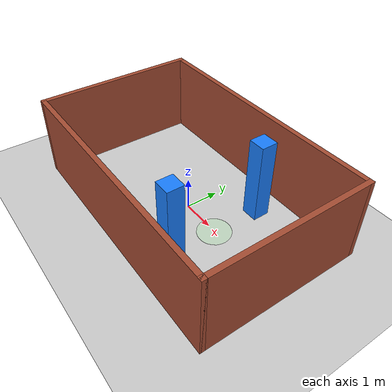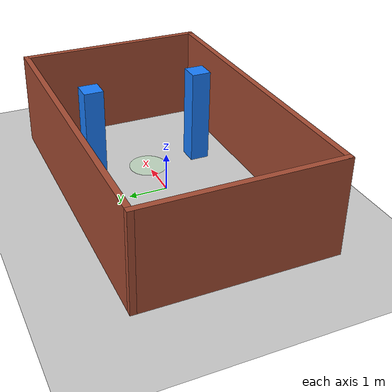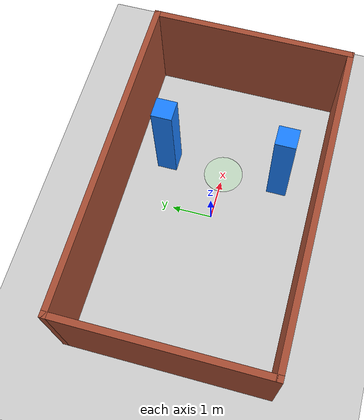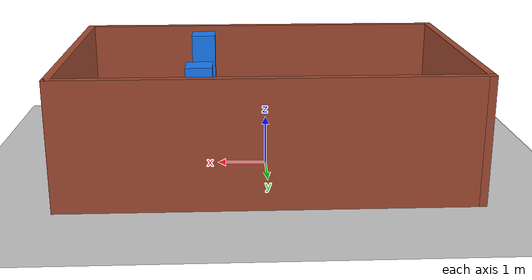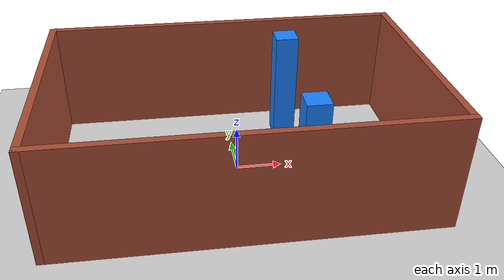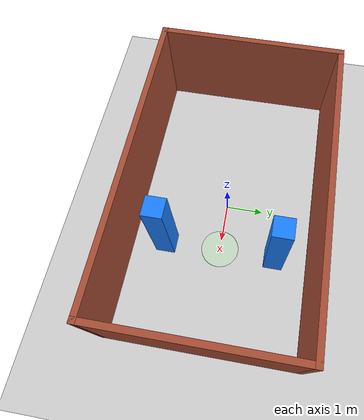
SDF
<sdf version="1.6">
 <world name="default">
  <light name="sun" type="directional">
   <pose>0 0 10 0 -0 0</pose>
   <diffuse>0.8 0.8 0.8 1</diffuse>
   <specular>0.2 0.2 0.2 1</specular>
   <attenuation>
    <range>1000</range>
    <constant>0.9</constant>
    <linear>0.01</linear>
    <quadratic>0.001</quadratic>
   </attenuation>
   <direction>-0.5 0.1 -0.9</direction>
  </light>
  <model name="ground_plane">
   <static>1</static>
   <link name="link">
    <collision name="collision">
     <geometry><plane><normal>0 0 1</normal><size>100 100</size></plane></geometry>
     <surface>
      <contact><collide_bitmask>65535</collide_bitmask></contact>
      <friction><ode><mu>100</mu><mu2>50</mu2></ode></friction>
     </surface>
    </collision>
    <visual name="visual">
     <cast_shadows>0</cast_shadows>
     <geometry><plane><normal>0 0 1</normal><size>100 100</size></plane></geometry>
     <material>
      <script><uri>file://media/materials/scripts/gazebo.material</uri><name>Gazebo/Grey</name></script>
     </material>
    </visual>
   </link>
  </model>
  <gravity>0 0 -9.8</gravity>
  <magnetic_field>6e-06 2.3e-05 -4.2e-05</magnetic_field>
  <atmosphere type="adiabatic"/>
  <physics name="default_physics" default="0" type="ode">
   <max_step_size>0.001</max_step_size>
   <real_time_factor>1</real_time_factor>
   <real_time_update_rate>1000</real_time_update_rate>
  </physics>
  <scene><ambient>0.4 0.4 0.4 1</ambient><background>0.7 0.7 0.7 1</background><shadows>1</shadows></scene>
  <spherical_coordinates>
   <surface_model>EARTH_WGS84</surface_model>
   <latitude_deg>0</latitude_deg>
   <longitude_deg>0</longitude_deg>
   <elevation>0</elevation>
   <heading_deg>0</heading_deg>
  </spherical_coordinates>
  <model name="benchmark1">
   <pose>0.0 -0.0 0 0 -0 1.57</pose>
   <link name="Wall_1">
    <collision name="Wall_1_Collision">
     <geometry><box><size>8 0.15 2.5</size></box></geometry>
     <pose>0 0 1.25 0 -0 0</pose>
    </collision>
    <visual name="Wall_1_Visual">
     <pose>0 0 1.25 0 -0 0</pose>
     <geometry><box><size>8 0.15 2.5</size></box></geometry>
     <material>
      <script><uri>file://media/materials/scripts/gazebo.material</uri><name>Gazebo/Bricks</name></script>
      <ambient>1 1 1 1</ambient>
     </material>
     <meta><layer>0</layer></meta>
    </visual>
    <pose>-2.425 0 0 0 -0 -1.5708</pose>
   </link>
   <link name="Wall_2">
    <collision name="Wall_2_Collision">
     <geometry><box><size>5 0.15 2.5</size></box></geometry>
     <pose>0 0 1.25 0 -0 0</pose>
    </collision>
    <visual name="Wall_2_Visual">
     <pose>0 0 1.25 0 -0 0</pose>
     <geometry><box><size>5 0.15 2.5</size></box></geometry>
     <material>
      <script><uri>file://media/materials/scripts/gazebo.material</uri><name>Gazebo/Bricks</name></script>
      <ambient>1 1 1 1</ambient>
     </material>
     <meta><layer>0</layer></meta>
    </visual>
    <pose>0 -3.925 0 0 -0 0</pose>
   </link>
   <link name="Wall_3">
    <collision name="Wall_3_Collision">
     <geometry><box><size>8 0.15 2.5</size></box></geometry>
     <pose>0 0 1.25 0 -0 0</pose>
    </collision>
    <visual name="Wall_3_Visual">
     <pose>0 0 1.25 0 -0 0</pose>
     <geometry><box><size>8 0.15 2.5</size></box></geometry>
     <material>
      <script><uri>file://media/materials/scripts/gazebo.material</uri><name>Gazebo/Bricks</name></script>
      <ambient>1 1 1 1</ambient>
     </material>
     <meta><layer>0</layer></meta>
    </visual>
    <pose>2.425 0 0 0 -0 1.5708</pose>
   </link>
   <link name="Wall_4">
    <collision name="Wall_4_Collision">
     <geometry><box><size>5 0.15 2.5</size></box></geometry>
     <pose>0 0 1.25 0 -0 0</pose>
    </collision>
    <visual name="Wall_4_Visual">
     <pose>0 0 1.25 0 -0 0</pose>
     <geometry><box><size>5 0.15 2.5</size></box></geometry>
     <material>
      <script><uri>file://media/materials/scripts/gazebo.material</uri><name>Gazebo/Bricks</name></script>
      <ambient>1 1 1 1</ambient>
     </material>
     <meta><layer>0</layer></meta>
    </visual>
    <pose>0 3.925 0 0 -0 3.14159</pose>
   </link>
   <static>1</static>
  </model>
  <model name="unit_box">
   <pose>1.30466 1.46626 1.25 0 -1e-06 -0.000118</pose>
   <link name="link">
    <inertial>
     <mass>1</mass>
     <inertia>
      <ixx>0.166667</ixx>
      <ixy>0</ixy>
      <ixz>0</ixz>
      <iyy>0.166667</iyy>
      <iyz>0</iyz>
      <izz>0.166667</izz>
     </inertia>
    </inertial>
    <visual name="visual">
     <geometry><box><size>0.5 0.5 2.5</size></box></geometry>
     <material>
      <script><name>Gazebo/Grey</name><uri>file://media/materials/scripts/gazebo.material</uri></script>
      <shader type="pixel"><normal_map>__default__</normal_map></shader>
      <ambient>0.3 0.3 1 1</ambient>
      <diffuse>0.1 0.5 1 1</diffuse>
      <specular>0.1 0.1 1 1</specular>
      <emissive>0.1 0.1 1 1</emissive>
     </material>
    </visual>
    <collision name="collision">
     <geometry><box><size>0.5 0.5 2.5</size></box></geometry>
     <surface>
      <friction>
       <ode><mu>1</mu><mu2>1</mu2><fdir1>0 0 0</fdir1><slip1>0</slip1><slip2>0</slip2></ode>
       <torsional>
        <coefficient>1</coefficient>
        <patch_radius>0</patch_radius>
        <surface_radius>0</surface_radius>
        <use_patch_radius>1</use_patch_radius>
        <ode><slip>0</slip></ode>
       </torsional>
      </friction>
      <bounce><restitution_coefficient>0</restitution_coefficient><threshold>1e+06</threshold></bounce>
      <contact>
       <collide_without_contact>0</collide_without_contact>
       <collide_without_contact_bitmask>1</collide_without_contact_bitmask>
       <collide_bitmask>1</collide_bitmask>
       <ode>
        <soft_cfm>0</soft_cfm>
        <soft_erp>0.2</soft_erp>
        <kp>1e+13</kp>
        <kd>1</kd>
        <max_vel>0.01</max_vel>
        <min_depth>0</min_depth>
       </ode>
       <bullet>
        <split_impulse>1</split_impulse>
        <split_impulse_penetration_threshold>-0.01</split_impulse_penetration_threshold>
        <soft_cfm>0</soft_cfm>
        <soft_erp>0.2</soft_erp>
        <kp>1e+13</kp>
        <kd>1</kd>
       </bullet>
      </contact>
     </surface>
    </collision>
   </link>
   <static>0</static>
   <pose>1.16471 1.46623 0 0 -0 0</pose>
  </model>
  <model name="unit_box_0">
   <pose>1.3093 -1.44258 1.25 2e-06 4e-06 -0.000152</pose>
   <link name="link">
    <inertial>
     <mass>1</mass>
     <inertia>
      <ixx>0.166667</ixx>
      <ixy>0</ixy>
      <ixz>0</ixz>
      <iyy>0.166667</iyy>
      <iyz>0</iyz>
      <izz>0.166667</izz>
     </inertia>
    </inertial>
    <visual name="visual">
     <geometry><box><size>0.5 0.5 2.5</size></box></geometry>
     <material>
      <script><name>Gazebo/Grey</name><uri>file://media/materials/scripts/gazebo.material</uri></script>
      <shader type="pixel"><normal_map>__default__</normal_map></shader>
      <ambient>0.3 0.3 1 1</ambient>
      <diffuse>0.1 0.5 1 1</diffuse>
      <specular>0.1 0.1 1 1</specular>
      <emissive>0.1 0.1 1 1</emissive>
     </material>
    </visual>
    <collision name="collision">
     <geometry><box><size>0.5 0.5 2.5</size></box></geometry>
     <surface>
      <friction>
       <ode><mu>1</mu><mu2>1</mu2><fdir1>0 0 0</fdir1><slip1>0</slip1><slip2>0</slip2></ode>
       <torsional>
        <coefficient>1</coefficient>
        <patch_radius>0</patch_radius>
        <surface_radius>0</surface_radius>
        <use_patch_radius>1</use_patch_radius>
        <ode><slip>0</slip></ode>
       </torsional>
      </friction>
      <bounce><restitution_coefficient>0</restitution_coefficient><threshold>1e+06</threshold></bounce>
      <contact>
       <collide_without_contact>0</collide_without_contact>
       <collide_without_contact_bitmask>1</collide_without_contact_bitmask>
       <collide_bitmask>1</collide_bitmask>
       <ode>
        <soft_cfm>0</soft_cfm>
        <soft_erp>0.2</soft_erp>
        <kp>1e+13</kp>
        <kd>1</kd>
        <max_vel>0.01</max_vel>
        <min_depth>0</min_depth>
       </ode>
       <bullet>
        <split_impulse>1</split_impulse>
        <split_impulse_penetration_threshold>-0.01</split_impulse_penetration_threshold>
        <soft_cfm>0</soft_cfm>
        <soft_erp>0.2</soft_erp>
        <kp>1e+13</kp>
        <kd>1</kd>
       </bullet>
      </contact>
     </surface>
    </collision>
   </link>
   <static>0</static>
   <pose>1.2593 -1.44258 0 0 -0 0</pose>
  </model>
  <model name="spotlight">
   <link name="link">
    <inertial>
     <mass>1</mass>
     <inertia><ixx>0.145833</ixx><ixy>0</ixy><ixz>0</ixz><iyy>0.145833</iyy><iyz>0</iyz><izz>0.125</izz></inertia>
    </inertial>
    <gravity>0</gravity>
    <visual name="visual">
     <geometry><cylinder><radius>0.5</radius><length>0.02</length></cylinder></geometry>
     <material>
      <script><name>Gazebo/Grey</name><uri>file://media/materials/scripts/gazebo.material</uri></script>
      <shader type="pixel"><normal_map>__default__</normal_map></shader>
      <ambient>0.1 1 0.1 1</ambient>
      <diffuse>0.7 1 0.7 1</diffuse>
      <specular>0.01 0.31 0.01 1</specular>
      <emissive>0 0 0 1</emissive>
     </material>
     <transparency>0.7</transparency>
    </visual>
   </link>
   <static>0</static>
   <pose>1.25 0 0 0 0 -0</pose>
   <visibility_flags>0</visibility_flags>
  </model>
 </world>
</sdf>
